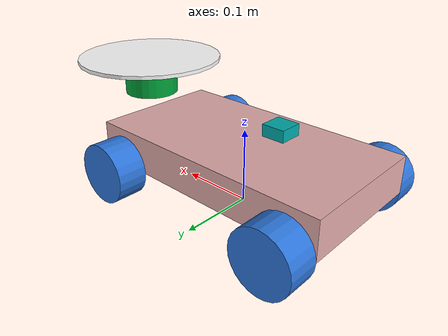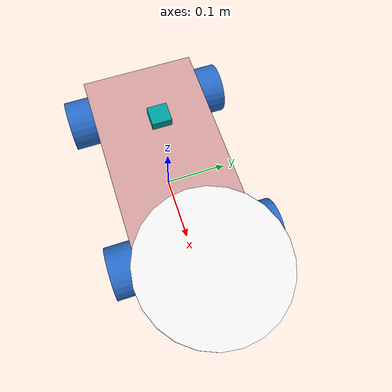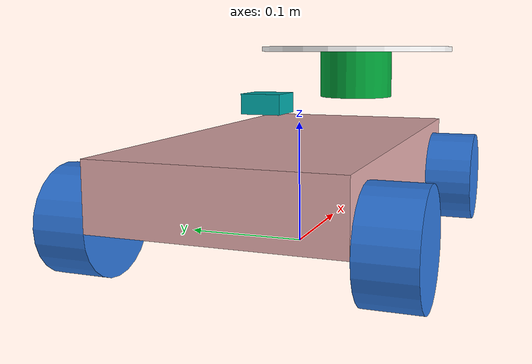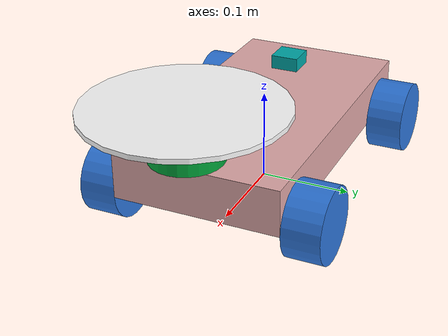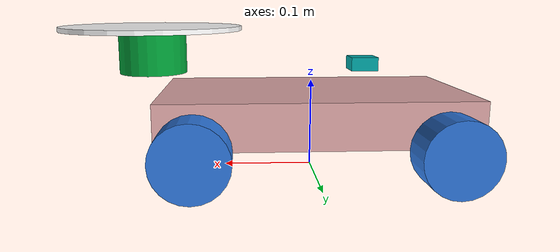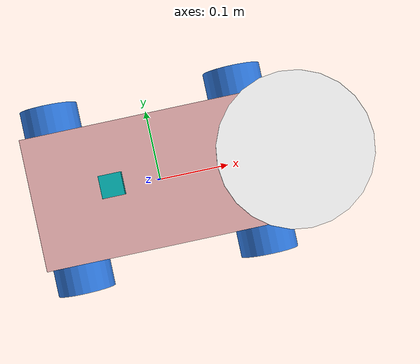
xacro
<?xml version="1.0"?>
<robot name="telerobot" xmlns:xacro="http://ros.org/wiki/xacro">

  <xacro:include filename="$(find telerobot_description)/urdf/mecanum_properties.urdf.xacro" />
  <xacro:include filename="$(find telerobot_description)/urdf/mech/base.urdf.xacro" />
  <xacro:include filename="$(find telerobot_description)/urdf/mech/mecanum_wheel.urdf.xacro" />
  <xacro:include filename="$(find telerobot_description)/urdf/sensors/imu.urdf.xacro" />
  <xacro:include filename="$(find telerobot_description)/urdf/sensors/generic_laser.urdf.xacro" />
  <xacro:include filename="$(find telerobot_description)/urdf/controllers/omni_drive.urdf.xacro" />

  <xacro:base
    length="${base_length}"
    width="${base_width}"
    height="${base_height}"
    mass="${base_mass}"
    wheel_radius="${wheel_radius}"
    wheel_pos_z="${wheel_pos_z}"
/>

  <xacro:mecanum_wheel
    side="front_left"
    radius="${wheel_radius}"
    width="${wheel_width}"
    pos_x="${wheel_pos_x}"
    pos_y="${wheel_pos_y}"
    pos_z="${wheel_pos_z}"
    mass="${wheel_mass}"
  />

  <xacro:mecanum_wheel
    side="front_right"
    radius="${wheel_radius}"
    width="${wheel_width}"
    pos_x="${wheel_pos_x}"
    pos_y="${-wheel_pos_y}"
    pos_z="${wheel_pos_z}"
    mass="${wheel_mass}"
  />
  <xacro:mecanum_wheel
    side="rear_left"
    radius="${wheel_radius}"
    width="${wheel_width}"
    pos_x="${-wheel_pos_x}"
    pos_y="${wheel_pos_y}"
    pos_z="${wheel_pos_z}"
    mass="${wheel_mass}"
  />

  <xacro:mecanum_wheel
    side="rear_right"
    radius="${wheel_radius}"
    width="${wheel_width}"
    pos_x="${-wheel_pos_x}"
    pos_y="${-wheel_pos_y}"
    pos_z="${wheel_pos_z}"
    mass="${wheel_mass}"
  />

  <xacro:imu/>

  <xacro:generic_laser>
    <xacro:insert_block name="laser_pose" />
  </xacro:generic_laser>

  <xacro:omni_drive_controller/>
</robot>

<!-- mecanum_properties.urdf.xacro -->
<robot xmlns:xacro="http://ros.org/wiki/xacro">
  <xacro:property name="base_length" value="0.34" />
  <xacro:property name="base_width" value="0.18" />
  <xacro:property name="base_height" value="0.05" />
  <xacro:property name="base_mass" value="10" />

  <xacro:property name="wheel_radius" value="0.04" />
  <xacro:property name="wheel_width" value="0.04" />
  <xacro:property name="wheel_pos_x" value="0.13" />
  <xacro:property name="wheel_pos_y" value="0.11" />
  <xacro:property name="wheel_pos_z" value="-0.025" />
  <xacro:property name="wheel_mass" value=".6" />
  <xacro:property name="wheel_torque" value="20" />

  <xacro:property name="laser_pose">
    <origin xyz="0.18 0 0.095" rpy="0 0 0"/>
  </xacro:property>

  <xacro:property name="depth_sensor_pose">
    <origin xyz="0.2375 0 0.06" rpy="0 0 0"/>
  </xacro:property>
</robot>

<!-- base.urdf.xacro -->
<robot xmlns:xacro="http://ros.org/wiki/xacro">
  <xacro:macro name="base" params="length width height mass wheel_radius wheel_pos_z">
    <link name="base_footprint"/>

    <link name="base_link">
      <visual>
        <origin xyz="0 0 0" rpy="0 0 0"/>
        <geometry>
          <box size="${length} ${width} ${height}"/>
        </geometry>
        <material name="yellow">
          <color rgba="0.8784 0.6627 0.6627 1.0"/>
        </material>
      </visual>

      <collision>
        <origin xyz="0 0 0" rpy="0 0 0"/>
        <geometry>
          <box size="${length} ${width} ${height}"/>
        </geometry>
      </collision>
    </link>

    <gazebo reference="base_link">
      <visual>
        <material>
          <ambient>0.8392 0.6314 0.0 1.0</ambient>
          <diffuse>0.8392 0.6314 0.0 1.0</diffuse>
          <specular>0.99 0.99 0.99 1.0</specular>
          <emissive>0.0 0.0 0.0 0.0</emissive>
        </material>
      </visual>
    </gazebo>

    <joint name="base_to_footprint" type="fixed">
      <parent link="base_footprint"/>
      <child link="base_link"/>
      <origin xyz="0 0 ${wheel_radius - wheel_pos_z}" rpy="0 0 0"/>
    </joint>
  </xacro:macro>
</robot>

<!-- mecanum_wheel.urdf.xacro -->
<robot xmlns:xacro="http://ros.org/wiki/xacro">
  <xacro:macro name="mecanum_wheel" params="side radius width pos_x pos_y pos_z mass">
    <link name="${side}_wheel_link">
      <visual>
        <origin xyz="0 0 0" rpy="${pi/2} 0 0"/>
        <geometry>
          <cylinder radius="${radius}" length="${width}"/>
        </geometry>
        <material name="blue">
            <color rgba="0.1764 0.4588 0.8509 1.0"/>
        </material>
      </visual>
      <collision>
        <origin xyz="0 0 0" rpy="${pi/2} 0 0"/>
        <geometry>
          <cylinder radius="${radius}" length="${width}"/>
        </geometry>
      </collision>
    </link>

    <gazebo reference="${side}_wheel_link">
        <mu1>0.01</mu1>
        <mu2>0.01</mu2>
    </gazebo>

    <gazebo reference="${side}_wheel_link">
      <visual>
        <material>
          <ambient>0.1764 0.4588 0.8509 1.0</ambient>
          <diffuse>0.1764 0.4588 0.8509 1.0</diffuse>
          <specular>0.1764 0.4588 0.8509 1.0</specular>
          <emissive>0.0 0.0 0.0 0.0</emissive>
        </material>
      </visual>
    </gazebo>

    <joint name="${side}_wheel_joint" type="continuous">
      <axis xyz="0 1 0" />
      <parent link="base_link"/>
      <child link="${side}_wheel_link"/>
      <origin xyz="${pos_x} ${pos_y} ${pos_z}" rpy="0 0 0"/>
    </joint>
  </xacro:macro>
</robot>

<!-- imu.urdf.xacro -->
<robot xmlns:xacro="http://ros.org/wiki/xacro">
  <xacro:macro name="imu">
    <link name="imu_link">
      <visual>
        <origin xyz="0 0 0" rpy="0 0 0"/>
        <geometry>
          <box size="0.03 0.03 0.015"/>
        </geometry>
        <material name="yellow">
          <color rgba="0.0 0.6627 0.6627 1.0"/>
        </material>
      </visual>

      <collision>
        <origin xyz="0 0 0" rpy="0 0 0"/>
        <geometry>
          <box size="0.03 0.03 0.015"/>
        </geometry>
      </collision>
    </link>

    <joint name="imu_to_base_link" type="fixed">
      <parent link="base_link"/>
      <child link="imu_link"/>
      <origin xyz="-0.058 0.005 0.055" rpy="0 0 0"/>
    </joint>

    <gazebo reference="imu_link">
      <gravity>true</gravity>
      <sensor name="imu_sensor" type="imu">
      <always_on>true</always_on>
      <update_rate>20</update_rate>
      <visualize>true</visualize>
      <topic>__default_topic__</topic>
      <plugin filename="libgazebo_ros_imu_sensor.so" name="imu_plugin">
          <ros>
            <remapping>~/out:=imu/data</remapping>
          </ros>
          <topicName>imu/data</topicName>
          <bodyName>imu_link</bodyName>
          <updateRateHZ>10.0</updateRateHZ>
          <gaussianNoise>0.0</gaussianNoise>
          <xyzOffset>0 0 0</xyzOffset>
          <rpyOffset>0 0 0</rpyOffset>
          <frameName>imu_link</frameName>
          <initialOrientationAsReference>false</initialOrientationAsReference>
      </plugin>
      <pose>0 0 0 0 0 0</pose>
      </sensor>
    </gazebo>
  </xacro:macro>
</robot>

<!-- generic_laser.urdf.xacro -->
<robot xmlns:xacro="http://ros.org/wiki/xacro">
  <xacro:include filename="$(find telerobot_description)/urdf/sensors/laser.urdf.xacro" />

  <xacro:macro name="generic_laser" params="*origin">
    <xacro:laser
      update_rate="10"
      ray_count="360"
      min_angle="-3.1416"
      max_angle="3.1416"
      min_range="0.08"
      max_range="12.0"
      frame_id="laser"
      topic_name="scan"
    >
      <xacro:insert_block name="origin" />
    </xacro:laser>
  </xacro:macro>

  <xacro:macro name="generic_base_laser" params="*origin">
    <xacro:laser
      update_rate="10"
      ray_count="360"
      min_angle="-3.1416"
      max_angle="3.1416"
      min_range="0.21"
      max_range="5.5"
      frame_id="base_laser"
      topic_name="base/scan"
    >
      <xacro:insert_block name="origin" />
    </xacro:laser>
  </xacro:macro>
</robot>

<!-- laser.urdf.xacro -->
<robot xmlns:xacro="http://ros.org/wiki/xacro">
  <xacro:property name="M_PI" value="3.1415926535897931" />
  <xacro:macro name="laser" params="*origin update_rate ray_count min_angle max_angle min_range max_range frame_id topic_name">
    <link name="${frame_id}">
      <visual>
        <origin xyz="0 0 -0.025" rpy="0 0 0"/>
        <geometry>
          <cylinder radius="0.0375" length="0.05"/>
        </geometry>
        <material name="green">
            <color rgba="0.003 0.639 0.223 1.0"/>
        </material>
      </visual>
      <collision>
        <origin xyz="0 0 -0.025" rpy="0 0 0"/>
        <geometry>
          <cylinder radius="0.0375" length="0.05"/>
        </geometry>
      </collision>

      <inertial>
        <origin xyz="0 0 0" rpy="0 0 0"/>
        <mass value="0.1"/>
        <inertia ixx="${(2/5) * 0.1 * (0.0375 * 0.0375)}" ixy="0" ixz="0"
                 iyy="${(2/5) * 0.1 * (0.0375 * 0.0375)}" iyz="0"
                 izz="${(2/5) * 0.1 * (0.0375 * 0.0375)}" />
      </inertial>
    </link>

    <gazebo reference="${frame_id}">
      <visual>
        <material>
          <ambient>0.003 0.639 0.223 1.0</ambient>
          <diffuse>0.003 0.639 0.223 1.0</diffuse>
          <specular>0.003 0.639 0.223 1.0</specular>
          <emissive>0.0 0.0 0.0 0.0</emissive>
        </material>
      </visual>
    </gazebo>

    <link name="laser_radius">
      <visual>
        <origin xyz="0 0 0" rpy="0 0 0"/>
        <geometry>
          <cylinder radius="0.1" length ="0.005"/>
        </geometry>
        <material name="blue">
          <color rgba ="1 1 1 1"/>
        </material>
      </visual>
    </link>

    <joint name ="laser_radius_to_laser" type ="fixed">
      <parent link="laser"/>
      <child link="laser_radius"/>
      <origin xyz="0 0 0" rpy="0 0 0"/>
    </joint>

    <joint name="${frame_id}_to_base_link" type="fixed">
      <parent link="base_link"/>
      <child link="${frame_id}"/>
      <xacro:insert_block name="origin" />
    </joint>

    <gazebo reference="${frame_id}">
      <sensor type="ray" name="${frame_id}_head_hokuyo_sensor">
        <always_on>true</always_on>
        <update_rate>${update_rate}</update_rate>
        <pose>0 0 0 0 0 0</pose>
        <visualize>false</visualize>
        <ray>
          <scan>
            <horizontal>
              <samples>${ray_count}</samples>
              <resolution>1</resolution>
              <min_angle>${min_angle}</min_angle>
              <max_angle>${max_angle}</max_angle>
            </horizontal>
          </scan>
          <range>
            <min>${min_range}</min>
            <max>${max_range}</max>
            <resolution>0.01</resolution>
          </range>
        </ray>
        <plugin name="${frame_id}_gazebo_ros_head_hokuyo_controller" filename="libgazebo_ros_ray_sensor.so">
          <ros>
            <remapping>~/out:=${topic_name}</remapping>
          </ros>
          <output_type>sensor_msgs/LaserScan</output_type>
          <alwaysOn>true</alwaysOn>
          <updateRate>${update_rate}</updateRate>
          <topicName>${topic_name}</topicName>
          <frame_name>${frame_id}</frame_name>
          <output_type>sensor_msgs/LaserScan</output_type>
        </plugin>
      </sensor>
    </gazebo>
  </xacro:macro>
</robot>
